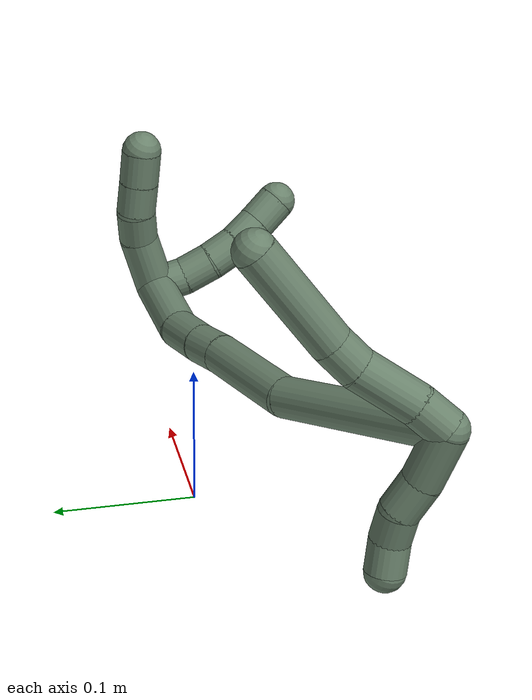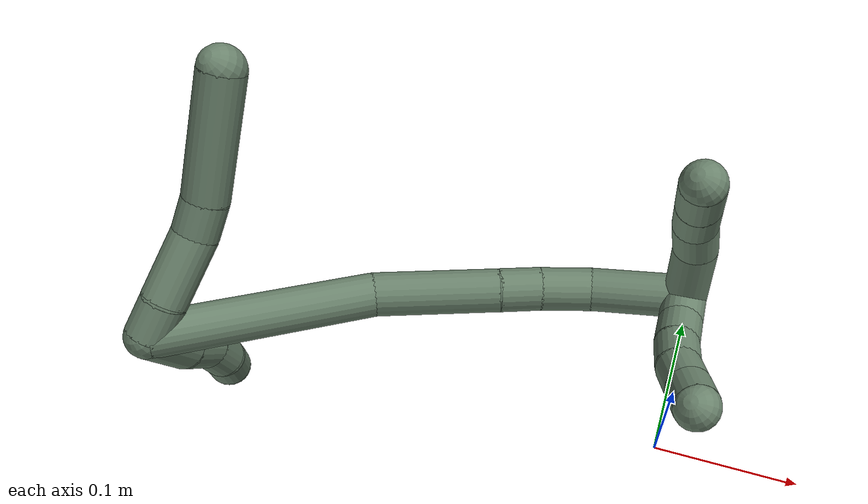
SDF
<sdf version="1.7">
 <world name="default">
  <model name="17">
   <static>0</static>
   <link name="17">
    <collision name="collision-cylinder-e_1_2_8">
     <pose>0.002044 0.010271 0.002975 -1.2889 0.188916 -0.142151</pose>
     <geometry><cylinder><radius>0.0125</radius><length>0.021773</length></cylinder></geometry>
     <surface>
      <friction><ode><mu>1.16</mu><mu2>1.16</mu2><slip1>0</slip1><slip2>0</slip2></ode></friction>
      <contact><ode><kp>1e+06</kp><kd>1</kd><max_vel>0</max_vel><min_depth>0.001</min_depth></ode></contact>
     </surface>
    </collision>
    <visual name="visual-cylinder-e_1_2_8">
     <pose>0.002044 0.010271 0.002975 -1.2889 0.188916 -0.142151</pose>
     <geometry><cylinder><radius>0.0125</radius><length>0.021773</length></cylinder></geometry>
     <material><ambient>0.415686 0.509804 0.423529 1</ambient></material>
    </visual>
    <collision name="collision-cylinder-e_2_8_9">
     <pose>0.005947 0.039778 0.009585 -1.38399 0.094619 -0.078429</pose>
     <geometry><cylinder><radius>0.0125</radius><length>0.03933</length></cylinder></geometry>
     <surface>
      <friction><ode><mu>1.16</mu><mu2>1.16</mu2><slip1>0</slip1><slip2>0</slip2></ode></friction>
      <contact><ode><kp>1e+06</kp><kd>1</kd><max_vel>0</max_vel><min_depth>0.001</min_depth></ode></contact>
     </surface>
    </collision>
    <visual name="visual-cylinder-e_2_8_9">
     <pose>0.005947 0.039778 0.009585 -1.38399 0.094619 -0.078429</pose>
     <geometry><cylinder><radius>0.0125</radius><length>0.03933</length></cylinder></geometry>
     <material><ambient>0.415686 0.509804 0.423529 1</ambient></material>
    </visual>
    <collision name="collision-cylinder-e_3_9_10">
     <pose>0.0091 0.068202 0.017263 -1.15634 0.128373 -0.083837</pose>
     <geometry><cylinder><radius>0.0125</radius><length>0.02024</length></cylinder></geometry>
     <surface>
      <friction><ode><mu>1.16</mu><mu2>1.16</mu2><slip1>0</slip1><slip2>0</slip2></ode></friction>
      <contact><ode><kp>1e+06</kp><kd>1</kd><max_vel>0</max_vel><min_depth>0.001</min_depth></ode></contact>
     </surface>
    </collision>
    <visual name="visual-cylinder-e_3_9_10">
     <pose>0.0091 0.068202 0.017263 -1.15634 0.128373 -0.083837</pose>
     <geometry><cylinder><radius>0.0125</radius><length>0.02024</length></cylinder></geometry>
     <material><ambient>0.415686 0.509804 0.423529 1</ambient></material>
    </visual>
    <collision name="collision-cylinder-e_4_10_6">
     <pose>0.013227 0.10631 0.039579 -1.00727 0.082552 -0.045506</pose>
     <geometry><cylinder><radius>0.0125</radius><length>0.068657</length></cylinder></geometry>
     <surface>
      <friction><ode><mu>1.16</mu><mu2>1.16</mu2><slip1>0</slip1><slip2>0</slip2></ode></friction>
      <contact><ode><kp>1e+06</kp><kd>1</kd><max_vel>0</max_vel><min_depth>0.001</min_depth></ode></contact>
     </surface>
    </collision>
    <visual name="visual-cylinder-e_4_10_6">
     <pose>0.013227 0.10631 0.039579 -1.00727 0.082552 -0.045506</pose>
     <geometry><cylinder><radius>0.0125</radius><length>0.068657</length></cylinder></geometry>
     <material><ambient>0.415686 0.509804 0.423529 1</ambient></material>
    </visual>
    <collision name="collision-cylinder-e_1_2_11">
     <pose>-0.003422 -0.000113 -0.017676 3.13519 -0.191228 -3.07489</pose>
     <geometry><cylinder><radius>0.0125</radius><length>0.036008</length></cylinder></geometry>
     <surface>
      <friction><ode><mu>1.16</mu><mu2>1.16</mu2><slip1>0</slip1><slip2>0</slip2></ode></friction>
      <contact><ode><kp>1e+06</kp><kd>1</kd><max_vel>0</max_vel><min_depth>0.001</min_depth></ode></contact>
     </surface>
    </collision>
    <visual name="visual-cylinder-e_1_2_11">
     <pose>-0.003422 -0.000113 -0.017676 3.13519 -0.191228 -3.07489</pose>
     <geometry><cylinder><radius>0.0125</radius><length>0.036008</length></cylinder></geometry>
     <material><ambient>0.415686 0.509804 0.423529 1</ambient></material>
    </visual>
    <collision name="collision-cylinder-e_2_11_12">
     <pose>-0.009663 0.001751 -0.046584 -2.96734 -0.242333 1.89701</pose>
     <geometry><cylinder><radius>0.0125</radius><length>0.023497</length></cylinder></geometry>
     <surface>
      <friction><ode><mu>1.16</mu><mu2>1.16</mu2><slip1>0</slip1><slip2>0</slip2></ode></friction>
      <contact><ode><kp>1e+06</kp><kd>1</kd><max_vel>0</max_vel><min_depth>0.001</min_depth></ode></contact>
     </surface>
    </collision>
    <visual name="visual-cylinder-e_2_11_12">
     <pose>-0.009663 0.001751 -0.046584 -2.96734 -0.242333 1.89701</pose>
     <geometry><cylinder><radius>0.0125</radius><length>0.023497</length></cylinder></geometry>
     <material><ambient>0.415686 0.509804 0.423529 1</ambient></material>
    </visual>
    <collision name="collision-cylinder-e_3_12_13">
     <pose>-0.014131 0.002247 -0.06767 2.99236 -0.163919 -1.66491</pose>
     <geometry><cylinder><radius>0.0125</radius><length>0.020201</length></cylinder></geometry>
     <surface>
      <friction><ode><mu>1.16</mu><mu2>1.16</mu2><slip1>0</slip1><slip2>0</slip2></ode></friction>
      <contact><ode><kp>1e+06</kp><kd>1</kd><max_vel>0</max_vel><min_depth>0.001</min_depth></ode></contact>
     </surface>
    </collision>
    <visual name="visual-cylinder-e_3_12_13">
     <pose>-0.014131 0.002247 -0.06767 2.99236 -0.163919 -1.66491</pose>
     <geometry><cylinder><radius>0.0125</radius><length>0.020201</length></cylinder></geometry>
     <material><ambient>0.415686 0.509804 0.423529 1</ambient></material>
    </visual>
    <collision name="collision-cylinder-e_4_13_5">
     <pose>-0.019814 -0.001705 -0.086501 2.87308 -0.408926 -1.98692</pose>
     <geometry><cylinder><radius>0.0125</radius><length>0.020294</length></cylinder></geometry>
     <surface>
      <friction><ode><mu>1.16</mu><mu2>1.16</mu2><slip1>0</slip1><slip2>0</slip2></ode></friction>
      <contact><ode><kp>1e+06</kp><kd>1</kd><max_vel>0</max_vel><min_depth>0.001</min_depth></ode></contact>
     </surface>
    </collision>
    <visual name="visual-cylinder-e_4_13_5">
     <pose>-0.019814 -0.001705 -0.086501 2.87308 -0.408926 -1.98692</pose>
     <geometry><cylinder><radius>0.0125</radius><length>0.020294</length></cylinder></geometry>
     <material><ambient>0.415686 0.509804 0.423529 1</ambient></material>
    </visual>
    <collision name="collision-cylinder-e_1_2_14">
     <pose>0.031085 0.037566 -0.036895 -2.34719 0.5333 -1.15436</pose>
     <geometry><cylinder><radius>0.0125</radius><length>0.122291</length></cylinder></geometry>
     <surface>
      <friction><ode><mu>1.16</mu><mu2>1.16</mu2><slip1>0</slip1><slip2>0</slip2></ode></friction>
      <contact><ode><kp>1e+06</kp><kd>1</kd><max_vel>0</max_vel><min_depth>0.001</min_depth></ode></contact>
     </surface>
    </collision>
    <visual name="visual-cylinder-e_1_2_14">
     <pose>0.031085 0.037566 -0.036895 -2.34719 0.5333 -1.15436</pose>
     <geometry><cylinder><radius>0.0125</radius><length>0.122291</length></cylinder></geometry>
     <material><ambient>0.415686 0.509804 0.423529 1</ambient></material>
    </visual>
    <collision name="collision-cylinder-e_2_14_15">
     <pose>0.088489 0.092897 -0.089702 -2.30123 0.834609 -1.56306</pose>
     <geometry><cylinder><radius>0.0125</radius><length>0.071034</length></cylinder></geometry>
     <surface>
      <friction><ode><mu>1.16</mu><mu2>1.16</mu2><slip1>0</slip1><slip2>0</slip2></ode></friction>
      <contact><ode><kp>1e+06</kp><kd>1</kd><max_vel>0</max_vel><min_depth>0.001</min_depth></ode></contact>
     </surface>
    </collision>
    <visual name="visual-cylinder-e_2_14_15">
     <pose>0.088489 0.092897 -0.089702 -2.30123 0.834609 -1.56306</pose>
     <geometry><cylinder><radius>0.0125</radius><length>0.071034</length></cylinder></geometry>
     <material><ambient>0.415686 0.509804 0.423529 1</ambient></material>
    </visual>
    <collision name="collision-cylinder-e_3_15_16">
     <pose>0.123057 0.116622 -0.111578 -2.35639 0.774354 -1.55537</pose>
     <geometry><cylinder><radius>0.0125</radius><length>0.023591</length></cylinder></geometry>
     <surface>
      <friction><ode><mu>1.16</mu><mu2>1.16</mu2><slip1>0</slip1><slip2>0</slip2></ode></friction>
      <contact><ode><kp>1e+06</kp><kd>1</kd><max_vel>0</max_vel><min_depth>0.001</min_depth></ode></contact>
     </surface>
    </collision>
    <visual name="visual-cylinder-e_3_15_16">
     <pose>0.123057 0.116622 -0.111578 -2.35639 0.774354 -1.55537</pose>
     <geometry><cylinder><radius>0.0125</radius><length>0.023591</length></cylinder></geometry>
     <material><ambient>0.415686 0.509804 0.423529 1</ambient></material>
    </visual>
    <collision name="collision-cylinder-e_4_16_17">
     <pose>0.142408 0.129444 -0.124583 -2.36924 0.846129 -1.67262</pose>
     <geometry><cylinder><radius>0.0125</radius><length>0.029661</length></cylinder></geometry>
     <surface>
      <friction><ode><mu>1.16</mu><mu2>1.16</mu2><slip1>0</slip1><slip2>0</slip2></ode></friction>
      <contact><ode><kp>1e+06</kp><kd>1</kd><max_vel>0</max_vel><min_depth>0.001</min_depth></ode></contact>
     </surface>
    </collision>
    <visual name="visual-cylinder-e_4_16_17">
     <pose>0.142408 0.129444 -0.124583 -2.36924 0.846129 -1.67262</pose>
     <geometry><cylinder><radius>0.0125</radius><length>0.029661</length></cylinder></geometry>
     <material><ambient>0.415686 0.509804 0.423529 1</ambient></material>
    </visual>
    <collision name="collision-cylinder-e_5_17_1">
     <pose>0.177352 0.146371 -0.138246 -2.15257 1.10282 -1.70204</pose>
     <geometry><cylinder><radius>0.0125</radius><length>0.053424</length></cylinder></geometry>
     <surface>
      <friction><ode><mu>1.16</mu><mu2>1.16</mu2><slip1>0</slip1><slip2>0</slip2></ode></friction>
      <contact><ode><kp>1e+06</kp><kd>1</kd><max_vel>0</max_vel><min_depth>0.001</min_depth></ode></contact>
     </surface>
    </collision>
    <visual name="visual-cylinder-e_5_17_1">
     <pose>0.177352 0.146371 -0.138246 -2.15257 1.10282 -1.70204</pose>
     <geometry><cylinder><radius>0.0125</radius><length>0.053424</length></cylinder></geometry>
     <material><ambient>0.415686 0.509804 0.423529 1</ambient></material>
    </visual>
    <collision name="collision-cylinder-e_1_1_18">
     <pose>0.205236 0.148518 -0.140293 1.04703 0.416318 0.24265</pose>
     <geometry><cylinder><radius>0.0125</radius><length>0.02</length></cylinder></geometry>
     <surface>
      <friction><ode><mu>1.16</mu><mu2>1.16</mu2><slip1>0</slip1><slip2>0</slip2></ode></friction>
      <contact><ode><kp>1e+06</kp><kd>1</kd><max_vel>0</max_vel><min_depth>0.001</min_depth></ode></contact>
     </surface>
    </collision>
    <visual name="visual-cylinder-e_1_1_18">
     <pose>0.205236 0.148518 -0.140293 1.04703 0.416318 0.24265</pose>
     <geometry><cylinder><radius>0.0125</radius><length>0.02</length></cylinder></geometry>
     <material><ambient>0.415686 0.509804 0.423529 1</ambient></material>
    </visual>
    <collision name="collision-cylinder-e_2_18_19">
     <pose>0.213446 0.134023 -0.129441 0.808551 0.4297 0.186186</pose>
     <geometry><cylinder><radius>0.0125</radius><length>0.02</length></cylinder></geometry>
     <surface>
      <friction><ode><mu>1.16</mu><mu2>1.16</mu2><slip1>0</slip1><slip2>0</slip2></ode></friction>
      <contact><ode><kp>1e+06</kp><kd>1</kd><max_vel>0</max_vel><min_depth>0.001</min_depth></ode></contact>
     </surface>
    </collision>
    <visual name="visual-cylinder-e_2_18_19">
     <pose>0.213446 0.134023 -0.129441 0.808551 0.4297 0.186186</pose>
     <geometry><cylinder><radius>0.0125</radius><length>0.02</length></cylinder></geometry>
     <material><ambient>0.415686 0.509804 0.423529 1</ambient></material>
    </visual>
    <collision name="collision-cylinder-e_3_19_20">
     <pose>0.223001 0.121569 -0.11713 0.772404 0.569145 0.236771</pose>
     <geometry><cylinder><radius>0.0125</radius><length>0.02</length></cylinder></geometry>
     <surface>
      <friction><ode><mu>1.16</mu><mu2>1.16</mu2><slip1>0</slip1><slip2>0</slip2></ode></friction>
      <contact><ode><kp>1e+06</kp><kd>1</kd><max_vel>0</max_vel><min_depth>0.001</min_depth></ode></contact>
     </surface>
    </collision>
    <visual name="visual-cylinder-e_3_19_20">
     <pose>0.223001 0.121569 -0.11713 0.772404 0.569145 0.236771</pose>
     <geometry><cylinder><radius>0.0125</radius><length>0.02</length></cylinder></geometry>
     <material><ambient>0.415686 0.509804 0.423529 1</ambient></material>
    </visual>
    <collision name="collision-cylinder-e_4_20_21">
     <pose>0.235265 0.111391 -0.105245 0.63372 0.758107 0.259752</pose>
     <geometry><cylinder><radius>0.0125</radius><length>0.02</length></cylinder></geometry>
     <surface>
      <friction><ode><mu>1.16</mu><mu2>1.16</mu2><slip1>0</slip1><slip2>0</slip2></ode></friction>
      <contact><ode><kp>1e+06</kp><kd>1</kd><max_vel>0</max_vel><min_depth>0.001</min_depth></ode></contact>
     </surface>
    </collision>
    <visual name="visual-cylinder-e_4_20_21">
     <pose>0.235265 0.111391 -0.105245 0.63372 0.758107 0.259752</pose>
     <geometry><cylinder><radius>0.0125</radius><length>0.02</length></cylinder></geometry>
     <material><ambient>0.415686 0.509804 0.423529 1</ambient></material>
    </visual>
    <collision name="collision-cylinder-e_5_21_4">
     <pose>0.248467 0.103255 -0.092666 0.518182 0.684951 0.188433</pose>
     <geometry><cylinder><radius>0.0125</radius><length>0.02</length></cylinder></geometry>
     <surface>
      <friction><ode><mu>1.16</mu><mu2>1.16</mu2><slip1>0</slip1><slip2>0</slip2></ode></friction>
      <contact><ode><kp>1e+06</kp><kd>1</kd><max_vel>0</max_vel><min_depth>0.001</min_depth></ode></contact>
     </surface>
    </collision>
    <visual name="visual-cylinder-e_5_21_4">
     <pose>0.248467 0.103255 -0.092666 0.518182 0.684951 0.188433</pose>
     <geometry><cylinder><radius>0.0125</radius><length>0.02</length></cylinder></geometry>
     <material><ambient>0.415686 0.509804 0.423529 1</ambient></material>
    </visual>
    <collision name="collision-cylinder-e_1_1_22">
     <pose>0.203271 0.167402 -0.129717 -0.626465 0.110741 -0.035901</pose>
     <geometry><cylinder><radius>0.0125</radius><length>0.037631</length></cylinder></geometry>
     <surface>
      <friction><ode><mu>1.16</mu><mu2>1.16</mu2><slip1>0</slip1><slip2>0</slip2></ode></friction>
      <contact><ode><kp>1e+06</kp><kd>1</kd><max_vel>0</max_vel><min_depth>0.001</min_depth></ode></contact>
     </surface>
    </collision>
    <visual name="visual-cylinder-e_1_1_22">
     <pose>0.203271 0.167402 -0.129717 -0.626465 0.110741 -0.035901</pose>
     <geometry><cylinder><radius>0.0125</radius><length>0.037631</length></cylinder></geometry>
     <material><ambient>0.415686 0.509804 0.423529 1</ambient></material>
    </visual>
    <collision name="collision-cylinder-e_2_22_23">
     <pose>0.205856 0.182254 -0.105204 -0.393591 0.049828 -0.009936</pose>
     <geometry><cylinder><radius>0.0125</radius><length>0.020304</length></cylinder></geometry>
     <surface>
      <friction><ode><mu>1.16</mu><mu2>1.16</mu2><slip1>0</slip1><slip2>0</slip2></ode></friction>
      <contact><ode><kp>1e+06</kp><kd>1</kd><max_vel>0</max_vel><min_depth>0.001</min_depth></ode></contact>
     </surface>
    </collision>
    <visual name="visual-cylinder-e_2_22_23">
     <pose>0.205856 0.182254 -0.105204 -0.393591 0.049828 -0.009936</pose>
     <geometry><cylinder><radius>0.0125</radius><length>0.020304</length></cylinder></geometry>
     <material><ambient>0.415686 0.509804 0.423529 1</ambient></material>
    </visual>
    <collision name="collision-cylinder-e_3_23_24">
     <pose>0.20878 0.188637 -0.086121 -0.251273 0.236459 -0.030003</pose>
     <geometry><cylinder><radius>0.0125</radius><length>0.020641</length></cylinder></geometry>
     <surface>
      <friction><ode><mu>1.16</mu><mu2>1.16</mu2><slip1>0</slip1><slip2>0</slip2></ode></friction>
      <contact><ode><kp>1e+06</kp><kd>1</kd><max_vel>0</max_vel><min_depth>0.001</min_depth></ode></contact>
     </surface>
    </collision>
    <visual name="visual-cylinder-e_3_23_24">
     <pose>0.20878 0.188637 -0.086121 -0.251273 0.236459 -0.030003</pose>
     <geometry><cylinder><radius>0.0125</radius><length>0.020641</length></cylinder></geometry>
     <material><ambient>0.415686 0.509804 0.423529 1</ambient></material>
    </visual>
    <collision name="collision-cylinder-e_4_24_3">
     <pose>0.213736 0.193865 -0.066362 -0.265772 0.23926 -0.032134</pose>
     <geometry><cylinder><radius>0.0125</radius><length>0.021423</length></cylinder></geometry>
     <surface>
      <friction><ode><mu>1.16</mu><mu2>1.16</mu2><slip1>0</slip1><slip2>0</slip2></ode></friction>
      <contact><ode><kp>1e+06</kp><kd>1</kd><max_vel>0</max_vel><min_depth>0.001</min_depth></ode></contact>
     </surface>
    </collision>
    <visual name="visual-cylinder-e_4_24_3">
     <pose>0.213736 0.193865 -0.066362 -0.265772 0.23926 -0.032134</pose>
     <geometry><cylinder><radius>0.0125</radius><length>0.021423</length></cylinder></geometry>
     <material><ambient>0.415686 0.509804 0.423529 1</ambient></material>
    </visual>
    <collision name="collision-sphere-3">
     <pose>0.216274 0.196598 -0.056321 0 -0 0</pose>
     <geometry><sphere><radius>0.0125</radius></sphere></geometry>
     <surface>
      <friction><ode><mu>1.16</mu><mu2>1.16</mu2><slip1>0</slip1><slip2>0</slip2></ode></friction>
      <contact><ode><kp>1e+06</kp><kd>1</kd><max_vel>0</max_vel><min_depth>0.001</min_depth></ode></contact>
     </surface>
    </collision>
    <visual name="visual-sphere-3">
     <pose>0.216274 0.196598 -0.056321 0 -0 0</pose>
     <geometry><sphere><radius>0.0125</radius></sphere></geometry>
     <material><ambient>0.415686 0.509804 0.423529 1</ambient></material>
    </visual>
    <collision name="collision-sphere-24">
     <pose>0.211197 0.191132 -0.076403 0 -0 0</pose>
     <geometry><sphere><radius>0.0125</radius></sphere></geometry>
     <surface>
      <friction><ode><mu>1.16</mu><mu2>1.16</mu2><slip1>0</slip1><slip2>0</slip2></ode></friction>
      <contact><ode><kp>1e+06</kp><kd>1</kd><max_vel>0</max_vel><min_depth>0.001</min_depth></ode></contact>
     </surface>
    </collision>
    <visual name="visual-sphere-24">
     <pose>0.211197 0.191132 -0.076403 0 -0 0</pose>
     <geometry><sphere><radius>0.0125</radius></sphere></geometry>
     <material><ambient>0.415686 0.509804 0.423529 1</ambient></material>
    </visual>
    <collision name="collision-sphere-23">
     <pose>0.206362 0.186142 -0.09584 0 -0 0</pose>
     <geometry><sphere><radius>0.0125</radius></sphere></geometry>
     <surface>
      <friction><ode><mu>1.16</mu><mu2>1.16</mu2><slip1>0</slip1><slip2>0</slip2></ode></friction>
      <contact><ode><kp>1e+06</kp><kd>1</kd><max_vel>0</max_vel><min_depth>0.001</min_depth></ode></contact>
     </surface>
    </collision>
    <visual name="visual-sphere-23">
     <pose>0.206362 0.186142 -0.09584 0 -0 0</pose>
     <geometry><sphere><radius>0.0125</radius></sphere></geometry>
     <material><ambient>0.415686 0.509804 0.423529 1</ambient></material>
    </visual>
    <collision name="collision-sphere-22">
     <pose>0.205351 0.178365 -0.114568 0 -0 0</pose>
     <geometry><sphere><radius>0.0125</radius></sphere></geometry>
     <surface>
      <friction><ode><mu>1.16</mu><mu2>1.16</mu2><slip1>0</slip1><slip2>0</slip2></ode></friction>
      <contact><ode><kp>1e+06</kp><kd>1</kd><max_vel>0</max_vel><min_depth>0.001</min_depth></ode></contact>
     </surface>
    </collision>
    <visual name="visual-sphere-22">
     <pose>0.205351 0.178365 -0.114568 0 -0 0</pose>
     <geometry><sphere><radius>0.0125</radius></sphere></geometry>
     <material><ambient>0.415686 0.509804 0.423529 1</ambient></material>
    </visual>
    <collision name="collision-sphere-4">
     <pose>0.254794 0.099419 -0.085938 0 -0 0</pose>
     <geometry><sphere><radius>0.0125</radius></sphere></geometry>
     <surface>
      <friction><ode><mu>1.16</mu><mu2>1.16</mu2><slip1>0</slip1><slip2>0</slip2></ode></friction>
      <contact><ode><kp>1e+06</kp><kd>1</kd><max_vel>0</max_vel><min_depth>0.001</min_depth></ode></contact>
     </surface>
    </collision>
    <visual name="visual-sphere-4">
     <pose>0.254794 0.099419 -0.085938 0 -0 0</pose>
     <geometry><sphere><radius>0.0125</radius></sphere></geometry>
     <material><ambient>0.415686 0.509804 0.423529 1</ambient></material>
    </visual>
    <collision name="collision-sphere-21">
     <pose>0.242141 0.107091 -0.099393 0 -0 0</pose>
     <geometry><sphere><radius>0.0125</radius></sphere></geometry>
     <surface>
      <friction><ode><mu>1.16</mu><mu2>1.16</mu2><slip1>0</slip1><slip2>0</slip2></ode></friction>
      <contact><ode><kp>1e+06</kp><kd>1</kd><max_vel>0</max_vel><min_depth>0.001</min_depth></ode></contact>
     </surface>
    </collision>
    <visual name="visual-sphere-21">
     <pose>0.242141 0.107091 -0.099393 0 -0 0</pose>
     <geometry><sphere><radius>0.0125</radius></sphere></geometry>
     <material><ambient>0.415686 0.509804 0.423529 1</ambient></material>
    </visual>
    <collision name="collision-sphere-20">
     <pose>0.22839 0.115691 -0.111096 0 -0 0</pose>
     <geometry><sphere><radius>0.0125</radius></sphere></geometry>
     <surface>
      <friction><ode><mu>1.16</mu><mu2>1.16</mu2><slip1>0</slip1><slip2>0</slip2></ode></friction>
      <contact><ode><kp>1e+06</kp><kd>1</kd><max_vel>0</max_vel><min_depth>0.001</min_depth></ode></contact>
     </surface>
    </collision>
    <visual name="visual-sphere-20">
     <pose>0.22839 0.115691 -0.111096 0 -0 0</pose>
     <geometry><sphere><radius>0.0125</radius></sphere></geometry>
     <material><ambient>0.415686 0.509804 0.423529 1</ambient></material>
    </visual>
    <collision name="collision-sphere-11">
     <pose>-0.006844 -0.000226 -0.035351 0 -0 0</pose>
     <geometry><sphere><radius>0.0125</radius></sphere></geometry>
     <surface>
      <friction><ode><mu>1.16</mu><mu2>1.16</mu2><slip1>0</slip1><slip2>0</slip2></ode></friction>
      <contact><ode><kp>1e+06</kp><kd>1</kd><max_vel>0</max_vel><min_depth>0.001</min_depth></ode></contact>
     </surface>
    </collision>
    <visual name="visual-sphere-11">
     <pose>-0.006844 -0.000226 -0.035351 0 -0 0</pose>
     <geometry><sphere><radius>0.0125</radius></sphere></geometry>
     <material><ambient>0.415686 0.509804 0.423529 1</ambient></material>
    </visual>
    <collision name="collision-sphere-6">
     <pose>0.016057 0.135232 0.057854 0 -0 0</pose>
     <geometry><sphere><radius>0.0125</radius></sphere></geometry>
     <surface>
      <friction><ode><mu>1.16</mu><mu2>1.16</mu2><slip1>0</slip1><slip2>0</slip2></ode></friction>
      <contact><ode><kp>1e+06</kp><kd>1</kd><max_vel>0</max_vel><min_depth>0.001</min_depth></ode></contact>
     </surface>
    </collision>
    <visual name="visual-sphere-6">
     <pose>0.016057 0.135232 0.057854 0 -0 0</pose>
     <geometry><sphere><radius>0.0125</radius></sphere></geometry>
     <material><ambient>0.415686 0.509804 0.423529 1</ambient></material>
    </visual>
    <collision name="collision-sphere-10">
     <pose>0.010396 0.077389 0.021304 0 -0 0</pose>
     <geometry><sphere><radius>0.0125</radius></sphere></geometry>
     <surface>
      <friction><ode><mu>1.16</mu><mu2>1.16</mu2><slip1>0</slip1><slip2>0</slip2></ode></friction>
      <contact><ode><kp>1e+06</kp><kd>1</kd><max_vel>0</max_vel><min_depth>0.001</min_depth></ode></contact>
     </surface>
    </collision>
    <visual name="visual-sphere-10">
     <pose>0.010396 0.077389 0.021304 0 -0 0</pose>
     <geometry><sphere><radius>0.0125</radius></sphere></geometry>
     <material><ambient>0.415686 0.509804 0.423529 1</ambient></material>
    </visual>
    <collision name="collision-sphere-9">
     <pose>0.007805 0.059014 0.013221 0 -0 0</pose>
     <geometry><sphere><radius>0.0125</radius></sphere></geometry>
     <surface>
      <friction><ode><mu>1.16</mu><mu2>1.16</mu2><slip1>0</slip1><slip2>0</slip2></ode></friction>
      <contact><ode><kp>1e+06</kp><kd>1</kd><max_vel>0</max_vel><min_depth>0.001</min_depth></ode></contact>
     </surface>
    </collision>
    <visual name="visual-sphere-9">
     <pose>0.007805 0.059014 0.013221 0 -0 0</pose>
     <geometry><sphere><radius>0.0125</radius></sphere></geometry>
     <material><ambient>0.415686 0.509804 0.423529 1</ambient></material>
    </visual>
    <collision name="collision-sphere-2">
     <geometry><sphere><radius>0.0125</radius></sphere></geometry>
     <surface>
      <friction><ode><mu>1.16</mu><mu2>1.16</mu2><slip1>0</slip1><slip2>0</slip2></ode></friction>
      <contact><ode><kp>1e+06</kp><kd>1</kd><max_vel>0</max_vel><min_depth>0.001</min_depth></ode></contact>
     </surface>
    </collision>
    <visual name="visual-sphere-2">
     <geometry><sphere><radius>0.0125</radius></sphere></geometry>
     <material><ambient>0.415686 0.509804 0.423529 1</ambient></material>
    </visual>
    <collision name="collision-sphere-19">
     <pose>0.217612 0.127448 -0.123163 0 -0 0</pose>
     <geometry><sphere><radius>0.0125</radius></sphere></geometry>
     <surface>
      <friction><ode><mu>1.16</mu><mu2>1.16</mu2><slip1>0</slip1><slip2>0</slip2></ode></friction>
      <contact><ode><kp>1e+06</kp><kd>1</kd><max_vel>0</max_vel><min_depth>0.001</min_depth></ode></contact>
     </surface>
    </collision>
    <visual name="visual-sphere-19">
     <pose>0.217612 0.127448 -0.123163 0 -0 0</pose>
     <geometry><sphere><radius>0.0125</radius></sphere></geometry>
     <material><ambient>0.415686 0.509804 0.423529 1</ambient></material>
    </visual>
    <collision name="collision-sphere-8">
     <pose>0.004089 0.020542 0.005949 0 -0 0</pose>
     <geometry><sphere><radius>0.0125</radius></sphere></geometry>
     <surface>
      <friction><ode><mu>1.16</mu><mu2>1.16</mu2><slip1>0</slip1><slip2>0</slip2></ode></friction>
      <contact><ode><kp>1e+06</kp><kd>1</kd><max_vel>0</max_vel><min_depth>0.001</min_depth></ode></contact>
     </surface>
    </collision>
    <visual name="visual-sphere-8">
     <pose>0.004089 0.020542 0.005949 0 -0 0</pose>
     <geometry><sphere><radius>0.0125</radius></sphere></geometry>
     <material><ambient>0.415686 0.509804 0.423529 1</ambient></material>
    </visual>
    <collision name="collision-sphere-12">
     <pose>-0.012482 0.003729 -0.057816 0 -0 0</pose>
     <geometry><sphere><radius>0.0125</radius></sphere></geometry>
     <surface>
      <friction><ode><mu>1.16</mu><mu2>1.16</mu2><slip1>0</slip1><slip2>0</slip2></ode></friction>
      <contact><ode><kp>1e+06</kp><kd>1</kd><max_vel>0</max_vel><min_depth>0.001</min_depth></ode></contact>
     </surface>
    </collision>
    <visual name="visual-sphere-12">
     <pose>-0.012482 0.003729 -0.057816 0 -0 0</pose>
     <geometry><sphere><radius>0.0125</radius></sphere></geometry>
     <material><ambient>0.415686 0.509804 0.423529 1</ambient></material>
    </visual>
    <collision name="collision-sphere-13">
     <pose>-0.015779 0.000765 -0.077525 0 -0 0</pose>
     <geometry><sphere><radius>0.0125</radius></sphere></geometry>
     <surface>
      <friction><ode><mu>1.16</mu><mu2>1.16</mu2><slip1>0</slip1><slip2>0</slip2></ode></friction>
      <contact><ode><kp>1e+06</kp><kd>1</kd><max_vel>0</max_vel><min_depth>0.001</min_depth></ode></contact>
     </surface>
    </collision>
    <visual name="visual-sphere-13">
     <pose>-0.015779 0.000765 -0.077525 0 -0 0</pose>
     <geometry><sphere><radius>0.0125</radius></sphere></geometry>
     <material><ambient>0.415686 0.509804 0.423529 1</ambient></material>
    </visual>
    <collision name="collision-sphere-5">
     <pose>-0.023848 -0.004175 -0.095478 0 -0 0</pose>
     <geometry><sphere><radius>0.0125</radius></sphere></geometry>
     <surface>
      <friction><ode><mu>1.16</mu><mu2>1.16</mu2><slip1>0</slip1><slip2>0</slip2></ode></friction>
      <contact><ode><kp>1e+06</kp><kd>1</kd><max_vel>0</max_vel><min_depth>0.001</min_depth></ode></contact>
     </surface>
    </collision>
    <visual name="visual-sphere-5">
     <pose>-0.023848 -0.004175 -0.095478 0 -0 0</pose>
     <geometry><sphere><radius>0.0125</radius></sphere></geometry>
     <material><ambient>0.415686 0.509804 0.423529 1</ambient></material>
    </visual>
    <collision name="collision-sphere-14">
     <pose>0.06217 0.075132 -0.073791 0 -0 0</pose>
     <geometry><sphere><radius>0.0125</radius></sphere></geometry>
     <surface>
      <friction><ode><mu>1.16</mu><mu2>1.16</mu2><slip1>0</slip1><slip2>0</slip2></ode></friction>
      <contact><ode><kp>1e+06</kp><kd>1</kd><max_vel>0</max_vel><min_depth>0.001</min_depth></ode></contact>
     </surface>
    </collision>
    <visual name="visual-sphere-14">
     <pose>0.06217 0.075132 -0.073791 0 -0 0</pose>
     <geometry><sphere><radius>0.0125</radius></sphere></geometry>
     <material><ambient>0.415686 0.509804 0.423529 1</ambient></material>
    </visual>
    <collision name="collision-sphere-15">
     <pose>0.114808 0.110661 -0.105614 0 -0 0</pose>
     <geometry><sphere><radius>0.0125</radius></sphere></geometry>
     <surface>
      <friction><ode><mu>1.16</mu><mu2>1.16</mu2><slip1>0</slip1><slip2>0</slip2></ode></friction>
      <contact><ode><kp>1e+06</kp><kd>1</kd><max_vel>0</max_vel><min_depth>0.001</min_depth></ode></contact>
     </surface>
    </collision>
    <visual name="visual-sphere-15">
     <pose>0.114808 0.110661 -0.105614 0 -0 0</pose>
     <geometry><sphere><radius>0.0125</radius></sphere></geometry>
     <material><ambient>0.415686 0.509804 0.423529 1</ambient></material>
    </visual>
    <collision name="collision-sphere-16">
     <pose>0.131305 0.122584 -0.117541 0 -0 0</pose>
     <geometry><sphere><radius>0.0125</radius></sphere></geometry>
     <surface>
      <friction><ode><mu>1.16</mu><mu2>1.16</mu2><slip1>0</slip1><slip2>0</slip2></ode></friction>
      <contact><ode><kp>1e+06</kp><kd>1</kd><max_vel>0</max_vel><min_depth>0.001</min_depth></ode></contact>
     </surface>
    </collision>
    <visual name="visual-sphere-16">
     <pose>0.131305 0.122584 -0.117541 0 -0 0</pose>
     <geometry><sphere><radius>0.0125</radius></sphere></geometry>
     <material><ambient>0.415686 0.509804 0.423529 1</ambient></material>
    </visual>
    <collision name="collision-sphere-17">
     <pose>0.153512 0.136304 -0.131624 0 -0 0</pose>
     <geometry><sphere><radius>0.0125</radius></sphere></geometry>
     <surface>
      <friction><ode><mu>1.16</mu><mu2>1.16</mu2><slip1>0</slip1><slip2>0</slip2></ode></friction>
      <contact><ode><kp>1e+06</kp><kd>1</kd><max_vel>0</max_vel><min_depth>0.001</min_depth></ode></contact>
     </surface>
    </collision>
    <visual name="visual-sphere-17">
     <pose>0.153512 0.136304 -0.131624 0 -0 0</pose>
     <geometry><sphere><radius>0.0125</radius></sphere></geometry>
     <material><ambient>0.415686 0.509804 0.423529 1</ambient></material>
    </visual>
    <collision name="collision-sphere-1">
     <pose>0.201192 0.156438 -0.144867 0 -0 0</pose>
     <geometry><sphere><radius>0.0125</radius></sphere></geometry>
     <surface>
      <friction><ode><mu>1.16</mu><mu2>1.16</mu2><slip1>0</slip1><slip2>0</slip2></ode></friction>
      <contact><ode><kp>1e+06</kp><kd>1</kd><max_vel>0</max_vel><min_depth>0.001</min_depth></ode></contact>
     </surface>
    </collision>
    <visual name="visual-sphere-1">
     <pose>0.201192 0.156438 -0.144867 0 -0 0</pose>
     <geometry><sphere><radius>0.0125</radius></sphere></geometry>
     <material><ambient>0.415686 0.509804 0.423529 1</ambient></material>
    </visual>
    <collision name="collision-sphere-18">
     <pose>0.20928 0.140598 -0.135718 0 -0 0</pose>
     <geometry><sphere><radius>0.0125</radius></sphere></geometry>
     <surface>
      <friction><ode><mu>1.16</mu><mu2>1.16</mu2><slip1>0</slip1><slip2>0</slip2></ode></friction>
      <contact><ode><kp>1e+06</kp><kd>1</kd><max_vel>0</max_vel><min_depth>0.001</min_depth></ode></contact>
     </surface>
    </collision>
    <visual name="visual-sphere-18">
     <pose>0.20928 0.140598 -0.135718 0 -0 0</pose>
     <geometry><sphere><radius>0.0125</radius></sphere></geometry>
     <material><ambient>0.415686 0.509804 0.423529 1</ambient></material>
    </visual>
    <inertial>
     <pose>0.093663 0.088721 -0.063806 0 -0 0</pose>
     <mass>0.75</mass>
     <inertia>
      <ixx>-3.5e-05</ixx>
      <ixy>0</ixy>
      <ixz>0</ixz>
      <iyy>-5.7e-05</iyy>
      <iyz>0</iyz>
      <izz>-0.000286</izz>
     </inertia>
    </inertial>
   </link>
   <pose>-0.2772 -0.087542 0.200688 0.368291 -0.242769 -0.34221</pose>
  </model>
 </world>
</sdf>
